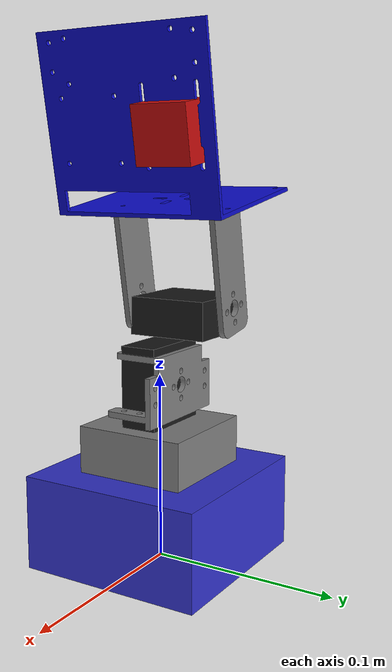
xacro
<?xml version="1.0"?>
<robot xmlns:xacro="http://www.ros.org/wiki/xacro" name="pan_tilt_robot">

  <xacro:arg name="sim_mode" default="true"/>

  <!-- Include pan_tilt mechanism -->
  <xacro:include filename="$(find pan_tilt_description)/urdf/pan_tilt.xacro"/>

  <!-- Include ros2_control configuration -->
  <xacro:include filename="$(find pan_tilt_description)/urdf/ros2_control_pan_tilt.xacro"/>

  <!-- Include Gazebo plugin -->
  <xacro:include filename="$(find pan_tilt_description)/urdf/ros2_control_gazebo.xacro"/>

  <!-- World link for Gazebo -->
  <link name="world"/>

  <!-- Base link to attach pan_tilt mechanism to -->
  <link name="base_link">
    <visual>
      <origin xyz="0 0 0.025" rpy="0 0 0"/>
      <geometry>
        <box size="0.1 0.1 0.05"/>
      </geometry>
      <material name="blue">
        <color rgba="0.2 0.2 0.8 1.0"/>
      </material>
    </visual>
    <collision>
      <origin xyz="0 0 0.025" rpy="0 0 0"/>
      <geometry>
        <box size="0.1 0.1 0.05"/>
      </geometry>
    </collision>
    <inertial>
      <origin xyz="0 0 0.025" rpy="0 0 0"/>
      <mass value="0.5"/>
      <inertia ixx="0.001" ixy="0.0" ixz="0.0"
               iyy="0.001" iyz="0.0"
               izz="0.001"/>
    </inertial>
  </link>

  <!-- Fix base to world -->
  <joint name="world_to_base" type="fixed">
    <parent link="world"/>
    <child link="base_link"/>
    <origin xyz="0 0 0" rpy="0 0 0"/>
  </joint>

  <!-- Instantiate the pan-tilt mechanism -->
  <xacro:pan_tilt_mechanism parent="base_link">
    <origin xyz="0 0 0.05" rpy="0 0 0"/>
  </xacro:pan_tilt_mechanism>

</robot>

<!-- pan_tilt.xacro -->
<robot xmlns:xacro="http://www.ros.org/wiki/xacro">

  <!-- Pan-Tilt Mechanism with Camera Mount for MG995/MG996 Servos -->

  <xacro:macro name="pan_tilt_mechanism" params="parent *origin">

    <!-- Properties for MG995/MG996 Servo Dimensions -->
    <xacro:property name="servo_length" value="0.0408"/>  <!-- 40.8mm -->
    <xacro:property name="servo_width" value="0.0197"/>   <!-- 19.7mm -->
    <xacro:property name="servo_height" value="0.0428"/>  <!-- 42.8mm -->
    <xacro:property name="servo_horn_radius" value="0.008"/> <!-- 8mm -->
    <xacro:property name="servo_horn_height" value="0.004"/> <!-- 4mm -->

    <!-- Base Properties -->
    <xacro:property name="base_length" value="0.06"/>
    <xacro:property name="base_width" value="0.06"/>
    <xacro:property name="base_height" value="0.025"/>

    <!-- Camera Properties -->
    <xacro:property name="camera_length" value="0.02"/>
    <xacro:property name="camera_width" value="0.028"/>
    <xacro:property name="camera_height" value="0.027"/>

    <xacro:property name="camera_mount_w" value="0.09"/>
    <xacro:property name="camera_mount_l" value="0.068"/>
    <xacro:property name="camera_mount_h" value="0.085"/>

    <xacro:property name="pan_tilt_leg_l" value="0.025"/>
    <xacro:property name="pan_tilt_leg_w" value="0.058"/>
    <xacro:property name="pan_tilt_leg_h" value="0.065"/>

    <!-- Mount Properties -->
    <xacro:property name="mount_thickness" value="0.0052"/>
    <xacro:property name="bracket_height" value="0.04"/>

    <!-- Materials -->
    <material name="servo_black">
      <color rgba="0.1 0.1 0.1 1.0"/>
    </material>

    <material name="bracket_gray">
      <color rgba="0.5 0.5 0.5 1.0"/>
    </material>

    <material name="camera_black">
      <color rgba="0.05 0.05 0.05 1.0"/>
    </material>

    <material name="camera_red">
      <color rgba="0.8 0.05 0.05 1.0"/>
    </material>

    <material name="camera_blue">
      <color rgba="0.05 0.05 0.8 1.0"/>
    </material>

    <!-- Base Link -->
    <joint name="pan_tilt_base_joint" type="fixed">
      <xacro:insert_block name="origin"/>
      <parent link="${parent}"/>
      <child link="pan_tilt_base_link"/>
    </joint>

    <link name="pan_tilt_base_link">
      <visual>
        <origin xyz="0 0 ${base_height/2}" rpy="0 0 0"/>
        <geometry>
          <box size="${base_length} ${base_width} ${base_height}"/>
        </geometry>
        <material name="bracket_gray"/>
      </visual>
      <collision>
        <origin xyz="0 0 ${base_height/2}" rpy="0 0 0"/>
        <geometry>
          <box size="${base_length} ${base_width} ${base_height}"/>
        </geometry>
      </collision>
      <inertial>
        <origin xyz="0 0 ${base_height/2}" rpy="0 0 0"/>
        <mass value="0.05"/>
        <inertia ixx="0.00002" ixy="0.0" ixz="0.0"
                 iyy="0.00002" iyz="0.0"
                 izz="0.00003"/>
      </inertial>
    </link>

    <!-- Pan Servo (Bottom Servo - Yaw rotation) -->
    <link name="pan_servo_bracket_link">
      <visual>
        <origin xyz="0 0 ${servo_height/2}" rpy="1.57 0 0"/>
        <geometry>
          <mesh filename="file://$(find pan_tilt_description)/urdf/meshes/stls/PAN-TILT_BASE_V1_fixed.stl" scale="0.001 0.001 0.001" />
        </geometry>
        <material name="bracket_gray"/>
      </visual>
      <collision>
        <origin xyz="0 0 ${servo_height/2}" rpy="1.57 0 0"/>
        <geometry>
          <mesh filename="file://$(find pan_tilt_description)/urdf/meshes/stls/PAN-TILT_BASE_V1_fixed.stl" scale="0.001 0.001 0.001" />
        </geometry>
      </collision>
      <inertial>
        <origin xyz="0 0 ${servo_height/2}" rpy="1.57 0 0"/>
        <mass value="0.055"/>
        <inertia ixx="0.00001" ixy="0.0" ixz="0.0"
                 iyy="0.00001" iyz="0.0"
                 izz="0.00001"/>
      </inertial>
    </link>

    <joint name="pan_servo_bracket_joint" type="fixed">
      <origin xyz="0 0 ${base_height}" rpy="0 0 0"/>
      <parent link="pan_tilt_base_link"/>
      <child link="pan_servo_bracket_link"/>
    </joint>

    <link name="pan_servo_link">
      <visual>
        <origin xyz="0 0 ${servo_height/2}" rpy="0 0 0"/>
        <geometry>
          <box size="${servo_length} ${servo_width} ${servo_height}"/>
        </geometry>
        <material name="servo_black"/>
      </visual>
      <collision>
        <origin xyz="0 0 ${servo_height/2}" rpy="0 0 0"/>
        <geometry>
          <box size="${servo_length} ${servo_width} ${servo_height}"/>
        </geometry>
      </collision>
      <inertial>
        <origin xyz="0 0 ${servo_height/2}" rpy="0 0 0"/>
        <mass value="0.055"/>
        <inertia ixx="0.00001" ixy="0.0" ixz="0.0"
                 iyy="0.00001" iyz="0.0"
                 izz="0.00001"/>
      </inertial>
    </link>

    <joint name="pan_servo_joint" type="fixed">
      <origin xyz="0 0 0" rpy="0 0 0"/>
      <parent link="pan_servo_bracket_link"/>
      <child link="pan_servo_link"/>
    </joint>

    <!-- Pan Link (Rotating part controlled by pan servo) -->
    <link name="pan_link">
      <visual>
        <origin xyz="0 0 0" rpy="0 0 0"/>
        <geometry>
          <mesh filename="file://$(find pan_tilt_description)/urdf/meshes/stls/PAN-TILT_ROTOR_V2_fixed.stl" scale="0.001 0.001 0.001" />
        </geometry>
        <material name="bracket_gray"/>
      </visual>
      <collision>
        <origin xyz="0 0 0" rpy="0 0 0"/>
        <geometry>
          <mesh filename="file://$(find pan_tilt_description)/urdf/meshes/stls/PAN-TILT_ROTOR_V2_fixed.stl" scale="0.001 0.001 0.001" />
        </geometry>
      </collision>
      <inertial>
        <origin xyz="0 0 0" rpy="0 0 0"/>
        <mass value="0.02"/>
        <inertia ixx="0.000005" ixy="0.0" ixz="0.0"
                 iyy="0.000005" iyz="0.0"
                 izz="0.000001"/>
      </inertial>
    </link>

    <joint name="pan_joint" type="revolute">
      <origin xyz="-${servo_length/4} 0 ${servo_height + servo_horn_height}" rpy="0 0 0"/>
      <parent link="pan_servo_link"/>
      <child link="pan_link"/>
      <axis xyz="0 0 1"/>
      <limit lower="${-pi}" upper="${pi}" effort="10.0" velocity="1.57"/>
      <dynamics damping="0.1" friction="0.1"/>
    </joint>

    <!-- Tilt Servo (Top Servo - Pitch rotation) -->
    <link name="tilt_servo_link">
      <visual>
        <origin xyz="0 0 0" rpy="${pi/2} 0 0"/>
        <geometry>
          <box size="${servo_length} ${servo_width} ${servo_height}"/>
        </geometry>
        <material name="servo_black"/>
      </visual>
      <collision>
        <origin xyz="0 0 0" rpy="0 ${pi/2} 0"/>
        <geometry>
          <box size="${servo_length} ${servo_width} ${servo_height}"/>
        </geometry>
      </collision>
      <inertial>
        <origin xyz="0 0 0" rpy="0 ${pi/2} 0"/>
        <mass value="0.055"/>
        <inertia ixx="0.00001" ixy="0.0" ixz="0.0"
                 iyy="0.00001" iyz="0.0"
                 izz="0.00001"/>
      </inertial>
    </link>

    <joint name="tilt_servo_joint" type="fixed">
      <origin xyz="0 ${servo_height/4} ${mount_thickness*2}" rpy="0 0 0"/>
      <parent link="pan_link"/>
      <child link="tilt_servo_link"/>
    </joint>

    <!-- Tilt Link (Rotating part controlled by tilt servo) -->
    <link name="tilt_link">
      <visual>
        <origin xyz="0 -0.022 0" rpy="0 0 0"/>
        <geometry>
          <mesh filename="file://$(find pan_tilt_description)/urdf/meshes/stls/PAN-TILT_LEG_V2_fixed.stl" scale="0.001 0.001 0.001" />
        </geometry>
        <material name="bracket_gray"/>
      </visual>
      <collision>
        <origin xyz="0 -0.022 0" rpy="0 0 0"/>
        <geometry>
          <mesh filename="file://$(find pan_tilt_description)/urdf/meshes/stls/PAN-TILT_LEG_V2_fixed.stl" scale="0.001 0.001 0.001" />
        </geometry>
      </collision>
      <inertial>
        <origin xyz="0 -0.022 0" rpy="0 0 0"/>
        <mass value="0.02"/>
        <inertia ixx="0.000001" ixy="0.0" ixz="0.0"
                 iyy="0.000005" iyz="0.0"
                 izz="0.000005"/>
      </inertial>
    </link>

    <joint name="tilt_joint" type="revolute">
      <origin xyz="${servo_length/4} 0.005 ${servo_height/10}" rpy="-1.4 0 1.57"/>
      <parent link="tilt_servo_link"/>
      <child link="tilt_link"/>
      <axis xyz="1 0 0"/>
      <limit lower="${-pi/2}" upper="${pi/2}" effort="10.0" velocity="1.57"/>
      <dynamics damping="0.1" friction="0.1"/>
    </joint>

    <!-- Camera Link -->
    <link name="pan_tilt_camera_link">
      <visual>
        <origin xyz="0 0 0" rpy="0 0 1.57"/>
        <geometry>
          <mesh filename="file://$(find pan_tilt_description)/urdf/meshes/stls/pi_stand_final_v2-Body_v2_fixed.stl" scale="0.001 0.001 0.001" />
        </geometry>
        <material name="camera_blue"/>
      </visual>
      <collision>
        <origin xyz="0 0 0" rpy="0 0 1.57"/>
        <geometry>
          <mesh filename="file://$(find pan_tilt_description)/urdf/meshes/stls/pi_stand_final_v2-Body_v2_fixed.stl" scale="0.001 0.001 0.001" />
        </geometry>
      </collision>
      <inertial>
        <origin xyz="0 0 0" rpy="0 0 1.57"/>
        <mass value="0.01"/>
        <inertia ixx="0.000001" ixy="0.0" ixz="0.0"
                 iyy="0.000001" iyz="0.0"
                 izz="0.000001"/>
      </inertial>
    </link>

    <joint name="camera_mount_joint" type="fixed">
      <origin xyz="0 -${pan_tilt_leg_h/2 +0.022+ camera_mount_h/2} 0" rpy="0 1.57 -1.57"/>
      <parent link="tilt_link"/>
      <child link="pan_tilt_camera_link"/>
    </joint>

    <!-- Camera Link -->
    <link name="rgb_camera_link">
      <visual>
        <origin xyz="0 0 0" rpy="0 0 0"/>
        <geometry>
          <box size="${camera_length} ${camera_width} ${camera_height}"/>
        </geometry>
        <material name="camera_red"/>
      </visual>
      <collision>
        <origin xyz="0 0 0" rpy="0 0 0"/>
        <geometry>
          <box size="${camera_length} ${camera_width} ${camera_height}"/>
        </geometry>
      </collision>
      <inertial>
        <origin xyz="0 0 0" rpy="0 0 0"/>
        <mass value="0.01"/>
        <inertia ixx="0.000001" ixy="0.0" ixz="0.0"
                 iyy="0.000001" iyz="0.0"
                 izz="0.000001"/>
      </inertial>

    </link>

    <joint name="rgb_camera_joint" type="fixed">
      <origin xyz="${camera_mount_l/2} 0.024 -0.004" rpy="0 0 0"/>
      <parent link="pan_tilt_camera_link"/>
      <child link="rgb_camera_link"/>
    </joint>

    <!-- Camera Optical Frame (for proper ROS camera convention) -->
    <link name="rgb_camera_optical_link"/>

    <joint name="camera_optical_joint" type="fixed">
      <origin xyz="0 0 0" rpy="${-pi/2} 0 ${-pi/2}"/>
      <parent link="rgb_camera_link"/>
      <child link="rgb_camera_optical_link"/>
    </joint>

  </xacro:macro>

  <gazebo reference="rgb_camera_link">
    <sensor name="depth_camera" type="depth_camera">
      <camera>
        <horizontal_fov>1.25</horizontal_fov>
        <image>
          <width>320</width>
          <height>240</height>
          <format>R8G8B8</format>
        </image>
        <clip>
          <near>0.1</near>
          <far>20</far>
        </clip>
        <optical_frame_id>rgb_camera_optical_link</optical_frame_id>
        <camera_info_topic>camera/depth/camera_info</camera_info_topic>
      </camera>
      <always_on>1</always_on>
      <update_rate>20</update_rate>
      <visualize>true</visualize>
      <topic>camera/depth/image_raw</topic>
      <point_cloud_topic>camera/depth/points</point_cloud_topic>
      <gz_frame_id>rgb_camera_link</gz_frame_id>
    </sensor>
    <sensor name="camera" type="camera">
      <camera>
        <horizontal_fov>1.25</horizontal_fov>
        <image>
          <width>320</width>
          <height>240</height>
          <format>R8G8B8</format>
        </image>
        <clip>
          <near>0.1</near>
          <far>20</far>
        </clip>
        <optical_frame_id>rgb_camera_optical_link</optical_frame_id>
        <camera_info_topic>camera/camera_info</camera_info_topic>
      </camera>
      <always_on>1</always_on>
      <update_rate>20</update_rate>
      <visualize>true</visualize>
      <topic>camera/image_raw</topic>
    </sensor>
  </gazebo>

</robot>
